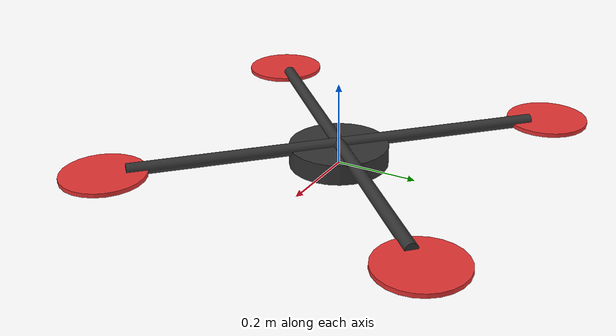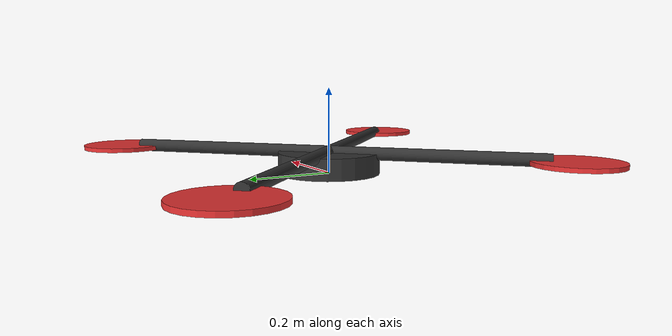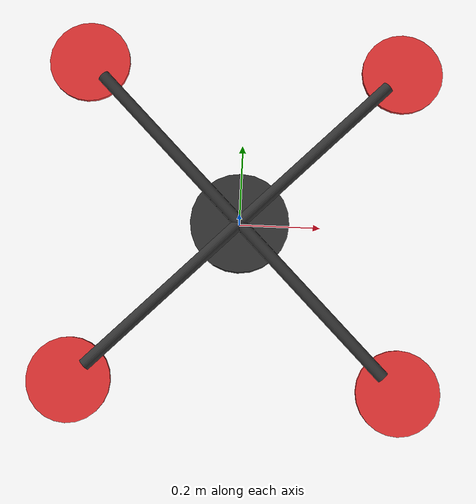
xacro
<?xml version="1.0"?>
<robot xmlns:xacro="http://www.ros.org/wiki/xacro" name="quadrotor">

  <xacro:property name="arm_length" value="0.25"/>
  <xacro:property name="body_radius" value="0.12"/>
  <xacro:property name="rotor_radius" value="0.1"/>
  <xacro:property name="drone_mass" value="1.5"/>

  <material name="drone_black">
    <color rgba="0.2 0.2 0.2 1.0"/>
  </material>
  <material name="drone_red">
    <color rgba="0.9 0.2 0.2 1.0"/>
  </material>

  <link name="base_link">
    <visual>
      <geometry>
        <cylinder radius="${body_radius}" length="0.05"/>
      </geometry>
      <material name="drone_black"/>
      <origin xyz="0 0 0.025" rpy="0 0 0"/>
    </visual>
    <collision>
      <geometry>
        <cylinder radius="${body_radius}" length="0.05"/>
      </geometry>
      <origin xyz="0 0 0.025" rpy="0 0 0"/>
    </collision>
    <inertial>
      <mass value="${drone_mass}"/>
      <inertia ixx="0.03" ixy="0" ixz="0" iyy="0.03" iyz="0" izz="0.05"/>
    </inertial>
  </link>

  <xacro:macro name="arm" params="name angle">
    <link name="${name}">
      <visual>
        <geometry>
          <cylinder radius="0.015" length="${arm_length * 2}"/>
        </geometry>
        <material name="drone_black"/>
        <origin xyz="${arm_length} 0 0" rpy="0 ${pi/2} 0"/>
      </visual>
      <collision>
        <geometry>
          <cylinder radius="0.015" length="${arm_length * 2}"/>
        </geometry>
        <origin xyz="${arm_length} 0 0" rpy="0 ${pi/2} 0"/>
      </collision>
    </link>
    <joint name="${name}_joint" type="fixed">
      <parent link="base_link"/>
      <child link="${name}"/>
      <origin xyz="0 0 0.05" rpy="0 0 ${angle}"/>
    </joint>
  </xacro:macro>

  <xacro:arm name="arm_0" angle="0.7854"/>
  <xacro:arm name="arm_1" angle="2.3562"/>
  <xacro:arm name="arm_2" angle="-2.3562"/>
  <xacro:arm name="arm_3" angle="-0.7854"/>

  <xacro:macro name="rotor" params="name arm_link outer_offset">
    <link name="${name}">
      <visual>
        <geometry>
          <cylinder radius="${rotor_radius}" length="0.01"/>
        </geometry>
        <material name="drone_red"/>
        <origin xyz="0 0 -0.005" rpy="0 0 0"/>
      </visual>
    </link>
    <joint name="${name}_joint" type="fixed">
      <parent link="${arm_link}"/>
      <child link="${name}"/>
      <origin xyz="${outer_offset * arm_length * 2 + 0.05} 0 0" rpy="0 0 0"/>
    </joint>
  </xacro:macro>

  <xacro:rotor name="rotor_0" arm_link="arm_0" outer_offset="1.0"/>
  <xacro:rotor name="rotor_1" arm_link="arm_1" outer_offset="1.0"/>
  <xacro:rotor name="rotor_2" arm_link="arm_2" outer_offset="1.0"/>
  <xacro:rotor name="rotor_3" arm_link="arm_3" outer_offset="1.0"/>

  <gazebo>
    <plugin filename="libignition-gazebo-odometry-publisher-system.so"
            name="ignition::gazebo::systems::OdometryPublisher">
      <odom_frame>world</odom_frame>
      <robot_base_frame>base_link</robot_base_frame>
      <odom_topic>/drone/odom</odom_topic>
      <ground_truth_pose_topic>/drone/ground_truth_pose</ground_truth_pose_topic>
    </plugin>
  </gazebo>

</robot>
